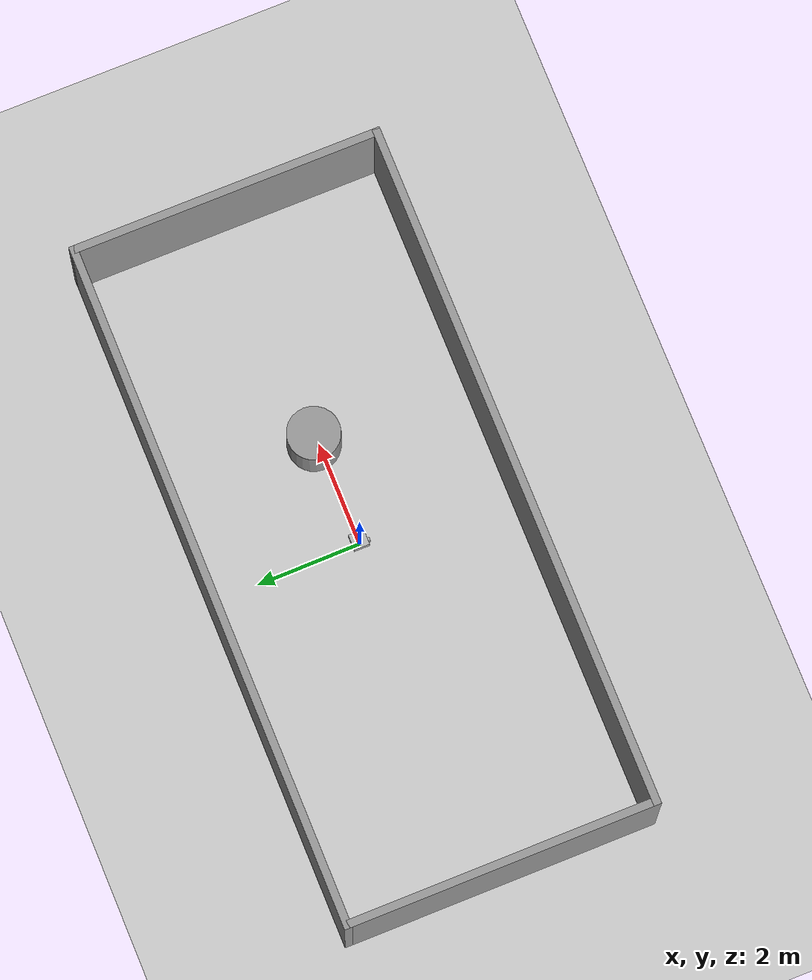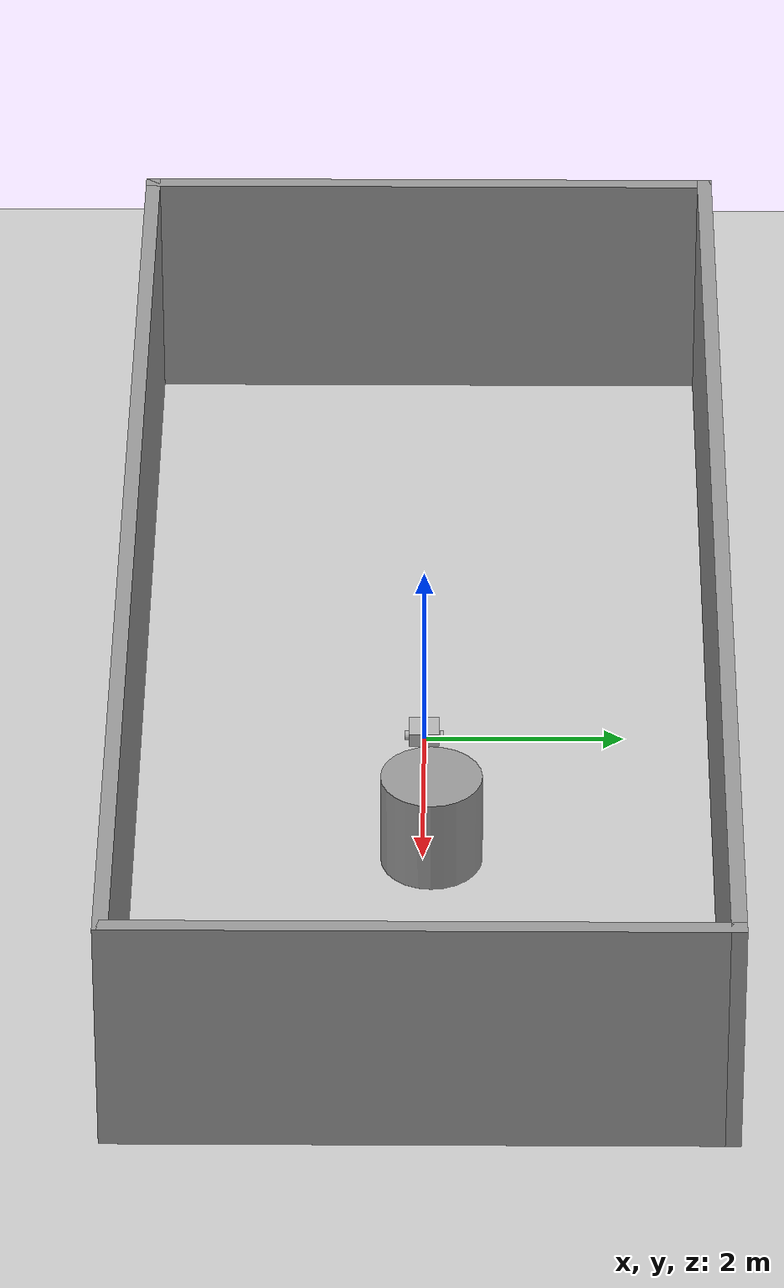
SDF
<sdf version="1.7">
 <world name="default">
  <light name="sun" type="directional">
   <pose>0 0 10 0 -0 0</pose>
   <diffuse>0.8 0.8 0.8 1</diffuse>
   <specular>0.2 0.2 0.2 1</specular>
   <attenuation>
    <range>1000</range>
    <constant>0.9</constant>
    <linear>0.01</linear>
    <quadratic>0.001</quadratic>
   </attenuation>
   <direction>-0.5 0.1 -0.9</direction>
   <spot><inner_angle>0</inner_angle><outer_angle>0</outer_angle><falloff>0</falloff></spot>
  </light>
  <model name="ground_plane">
   <static>1</static>
   <link name="link">
    <collision name="collision">
     <geometry><plane><normal>0 0 1</normal><size>100 100</size></plane></geometry>
     <surface>
      <contact><collide_bitmask>65535</collide_bitmask></contact>
      <friction><ode><mu>100</mu><mu2>50</mu2></ode></friction>
     </surface>
    </collision>
    <visual name="visual">
     <cast_shadows>0</cast_shadows>
     <geometry><plane><normal>0 0 1</normal><size>100 100</size></plane></geometry>
     <material>
      <script><uri>file://media/materials/scripts/gazebo.material</uri><name>Gazebo/Grey</name></script>
     </material>
    </visual>
   </link>
  </model>
  <gravity>0 0 -9.8</gravity>
  <magnetic_field>6e-06 2.3e-05 -4.2e-05</magnetic_field>
  <atmosphere type="adiabatic"/>
  <physics type="ode">
   <max_step_size>0.001</max_step_size>
   <real_time_factor>1</real_time_factor>
   <real_time_update_rate>1000</real_time_update_rate>
  </physics>
  <scene><ambient>0.4 0.4 0.4 1</ambient><background>0.7 0.7 0.7 1</background><shadows>1</shadows></scene>
  <spherical_coordinates>
   <surface_model>EARTH_WGS84</surface_model>
   <latitude_deg>0</latitude_deg>
   <longitude_deg>0</longitude_deg>
   <elevation>0</elevation>
   <heading_deg>0</heading_deg>
  </spherical_coordinates>
  <model name="NOMAL">
   <pose>-0.10725 0.001496 0 0 -0 0</pose>
   <link name="Wall_4">
    <collision name="Wall_4_Collision">
     <geometry><box><size>6 0.15 2.5</size></box></geometry>
     <pose>0 0 1.25 0 -0 0</pose>
    </collision>
    <visual name="Wall_4_Visual">
     <pose>0 0 1.25 0 -0 0</pose>
     <geometry><box><size>6 0.15 2.5</size></box></geometry>
     <material>
      <script><uri>file://media/materials/scripts/gazebo.material</uri><name>Gazebo/Grey</name></script>
      <ambient>1 1 1 1</ambient>
     </material>
     <meta><layer>0</layer></meta>
    </visual>
    <pose>-6.55 0 0 0 -0 -1.5708</pose>
   </link>
   <link name="Wall_5">
    <collision name="Wall_5_Collision">
     <geometry><box><size>13.25 0.15 2.5</size></box></geometry>
     <pose>0 0 1.25 0 -0 0</pose>
    </collision>
    <visual name="Wall_5_Visual">
     <pose>0 0 1.25 0 -0 0</pose>
     <geometry><box><size>13.25 0.15 2.5</size></box></geometry>
     <material>
      <script><uri>file://media/materials/scripts/gazebo.material</uri><name>Gazebo/Grey</name></script>
      <ambient>1 1 1 1</ambient>
     </material>
     <meta><layer>0</layer></meta>
    </visual>
    <pose>0 -2.925 0 0 -0 0</pose>
   </link>
   <link name="Wall_6">
    <collision name="Wall_6_Collision">
     <geometry><box><size>6 0.15 2.5</size></box></geometry>
     <pose>0 0 1.25 0 -0 0</pose>
    </collision>
    <visual name="Wall_6_Visual">
     <pose>0 0 1.25 0 -0 0</pose>
     <geometry><box><size>6 0.15 2.5</size></box></geometry>
     <material>
      <script><uri>file://media/materials/scripts/gazebo.material</uri><name>Gazebo/Grey</name></script>
      <ambient>1 1 1 1</ambient>
     </material>
     <meta><layer>0</layer></meta>
    </visual>
    <pose>6.55 0 0 0 -0 1.5708</pose>
   </link>
   <link name="Wall_7">
    <collision name="Wall_7_Collision">
     <geometry><box><size>13.25 0.15 2.5</size></box></geometry>
     <pose>0 0 1.25 0 -0 0</pose>
    </collision>
    <visual name="Wall_7_Visual">
     <pose>0 0 1.25 0 -0 0</pose>
     <geometry><box><size>13.25 0.15 2.5</size></box></geometry>
     <material>
      <script><uri>file://media/materials/scripts/gazebo.material</uri><name>Gazebo/Grey</name></script>
      <ambient>1 1 1 1</ambient>
     </material>
     <meta><layer>0</layer></meta>
    </visual>
    <pose>0 2.925 0 0 -0 3.14159</pose>
   </link>
   <static>1</static>
  </model>
  <model name="/">
   <link name="base_link">
    <inertial>
     <pose>0.05 0 0.075 0 -0 0</pose>
     <mass>0.5</mass>
     <inertia>
      <ixx>0.0046875</ixx>
      <ixy>0</ixy>
      <ixz>0</ixz>
      <iyy>0.0046875</iyy>
      <iyz>0</iyz>
      <izz>0.0075</izz>
     </inertia>
    </inertial>
    <collision name="base_link_fixed_joint_lump__chassis_collision">
     <pose>0.05 0 0.075 0 -0 0</pose>
     <geometry><box><size>0.3 0.3 0.15</size></box></geometry>
    </collision>
    <collision name="base_link_fixed_joint_lump__lidar_link_collision_1">
     <pose>0.1 0 0.2 0 -0 0</pose>
     <geometry><cylinder><length>0.06</length><radius>0.03</radius></cylinder></geometry>
    </collision>
    <visual name="base_link_fixed_joint_lump__chassis_visual">
     <pose>0.05 0 0.075 0 -0 0</pose>
     <geometry><box><size>0.3 0.3 0.15</size></box></geometry>
    </visual>
    <visual name="base_link_fixed_joint_lump__lidar_link_visual_1">
     <pose>0.1 0 0.2 0 -0 0</pose>
     <geometry><cylinder><length>0.06</length><radius>0.03</radius></cylinder></geometry>
     <material>
      <script><name>Gazebo/Red</name><uri>file://media/materials/scripts/gazebo.material</uri></script>
     </material>
    </visual>
    <sensor name="lidar" type="ray">
     <visualize>1</visualize>
     <update_rate>10</update_rate>
     <ray>
      <scan>
       <horizontal>
        <samples>359</samples>
        <min_angle>-3.14</min_angle>
        <max_angle>3.14</max_angle>
        <resolution>1</resolution>
       </horizontal>
       <vertical><samples>1</samples><min_angle>0</min_angle><max_angle>0</max_angle></vertical>
      </scan>
      <range><min>0.3</min><max>12</max></range>
     </ray>
     <plugin name="lidar_controller" filename="libgazebo_ros_laser.so">
      <topicName>/scan</topicName>
      <frameName>lidar_link</frameName>
      <robotNamespace>/</robotNamespace>
     </plugin>
     <pose>0.1 0 0.2 0 -0 0</pose>
    </sensor>
   </link>
   <joint name="caster_wheel_joint" type="revolute">
    <pose relative_to="base_link">0.14 0 0 0 -0 0</pose>
    <parent>base_link</parent>
    <child>caster_wheel</child>
    <axis>
     <xyz>0 1 0</xyz>
     <limit><lower>-1e+16</lower><upper>1e+16</upper></limit>
     <dynamics>
      <damping>0</damping>
      <friction>0</friction>
      <spring_reference>0</spring_reference>
      <spring_stiffness>0</spring_stiffness>
     </dynamics>
    </axis>
   </joint>
   <link name="caster_wheel">
    <pose relative_to="caster_wheel_joint">0 0 0 0 -0 0</pose>
    <inertial>
     <mass>0.1</mass>
     <inertia><ixx>0.0001</ixx><ixy>0</ixy><ixz>0</ixz><iyy>0.0001</iyy><iyz>0</iyz><izz>0.0001</izz></inertia>
    </inertial>
    <collision name="caster_wheel_collision">
     <geometry><sphere><radius>0.05</radius></sphere></geometry>
    </collision>
    <visual name="caster_wheel_visual"><geometry><sphere><radius>0.05</radius></sphere></geometry></visual>
   </link>
   <joint name="left_wheel" type="revolute">
    <pose relative_to="base_link">0 0.175 0 -1.5708 0 0</pose>
    <parent>base_link</parent>
    <child>left_wheel_link</child>
    <axis>
     <xyz>0 0 1</xyz>
     <limit><lower>-1e+16</lower><upper>1e+16</upper></limit>
     <dynamics>
      <damping>0.5</damping>
      <friction>100</friction>
      <spring_reference>0</spring_reference>
      <spring_stiffness>0</spring_stiffness>
     </dynamics>
    </axis>
   </joint>
   <link name="left_wheel_link">
    <pose relative_to="left_wheel">0 0 0 0 -0 0</pose>
    <inertial>
     <mass>0.1</mass>
     <inertia>
      <ixx>7.58333e-05</ixx>
      <ixy>0</ixy>
      <ixz>0</ixz>
      <iyy>7.58333e-05</iyy>
      <iyz>0</iyz>
      <izz>0.000125</izz>
     </inertia>
    </inertial>
    <collision name="left_wheel_link_collision">
     <geometry><cylinder><length>0.04</length><radius>0.05</radius></cylinder></geometry>
    </collision>
    <visual name="left_wheel_link_visual">
     <geometry><cylinder><length>0.04</length><radius>0.05</radius></cylinder></geometry>
    </visual>
   </link>
   <joint name="right_wheel" type="revolute">
    <pose relative_to="base_link">0 -0.175 0 1.5708 -0 0</pose>
    <parent>base_link</parent>
    <child>right_wheel_link</child>
    <axis>
     <xyz>0 0 -1</xyz>
     <limit><lower>-1e+16</lower><upper>1e+16</upper></limit>
     <dynamics>
      <damping>0.5</damping>
      <friction>100</friction>
      <spring_reference>0</spring_reference>
      <spring_stiffness>0</spring_stiffness>
     </dynamics>
    </axis>
   </joint>
   <link name="right_wheel_link">
    <pose relative_to="right_wheel">0 0 0 0 -0 0</pose>
    <inertial>
     <mass>0.1</mass>
     <inertia>
      <ixx>7.58333e-05</ixx>
      <ixy>0</ixy>
      <ixz>0</ixz>
      <iyy>7.58333e-05</iyy>
      <iyz>0</iyz>
      <izz>0.000125</izz>
     </inertia>
    </inertial>
    <collision name="right_wheel_link_collision">
     <geometry><cylinder><length>0.04</length><radius>0.05</radius></cylinder></geometry>
    </collision>
    <visual name="right_wheel_link_visual">
     <geometry><cylinder><length>0.04</length><radius>0.05</radius></cylinder></geometry>
    </visual>
   </link>
   <plugin name="gazebo_ros_control" filename="libgazebo_ros_control.so">
    <robotNamespace>/</robotNamespace>
    <legacyModeNS>1</legacyModeNS>
   </plugin>
   <frame name="lidar_joint" attached_to="chassis"><pose>0.2 0 0.2 0 -0 0</pose></frame>
   <frame name="lidar_link" attached_to="lidar_joint"/>
   <frame name="chassis_joint" attached_to="base_link"><pose>-0.1 0 0 0 -0 0</pose></frame>
   <frame name="chassis" attached_to="chassis_joint"/>
   <pose>0.004447 1e-05 0.05 0 3e-06 0.000358</pose>
  </model>
  <model name="unit_cylinder">
   <pose>2.03079 0.084026 0.499997 3e-06 4e-06 -0</pose>
   <link name="link">
    <inertial>
     <mass>1</mass>
     <inertia><ixx>0.145833</ixx><ixy>0</ixy><ixz>0</ixz><iyy>0.145833</iyy><iyz>0</iyz><izz>0.125</izz></inertia>
    </inertial>
    <collision name="collision">
     <geometry><cylinder><radius>0.5</radius><length>1</length></cylinder></geometry>
    </collision>
    <visual name="visual">
     <geometry><cylinder><radius>0.5</radius><length>1</length></cylinder></geometry>
     <material>
      <script><name>Gazebo/Grey</name><uri>file://media/materials/scripts/gazebo.material</uri></script>
     </material>
    </visual>
   </link>
  </model>
 </world>
</sdf>
